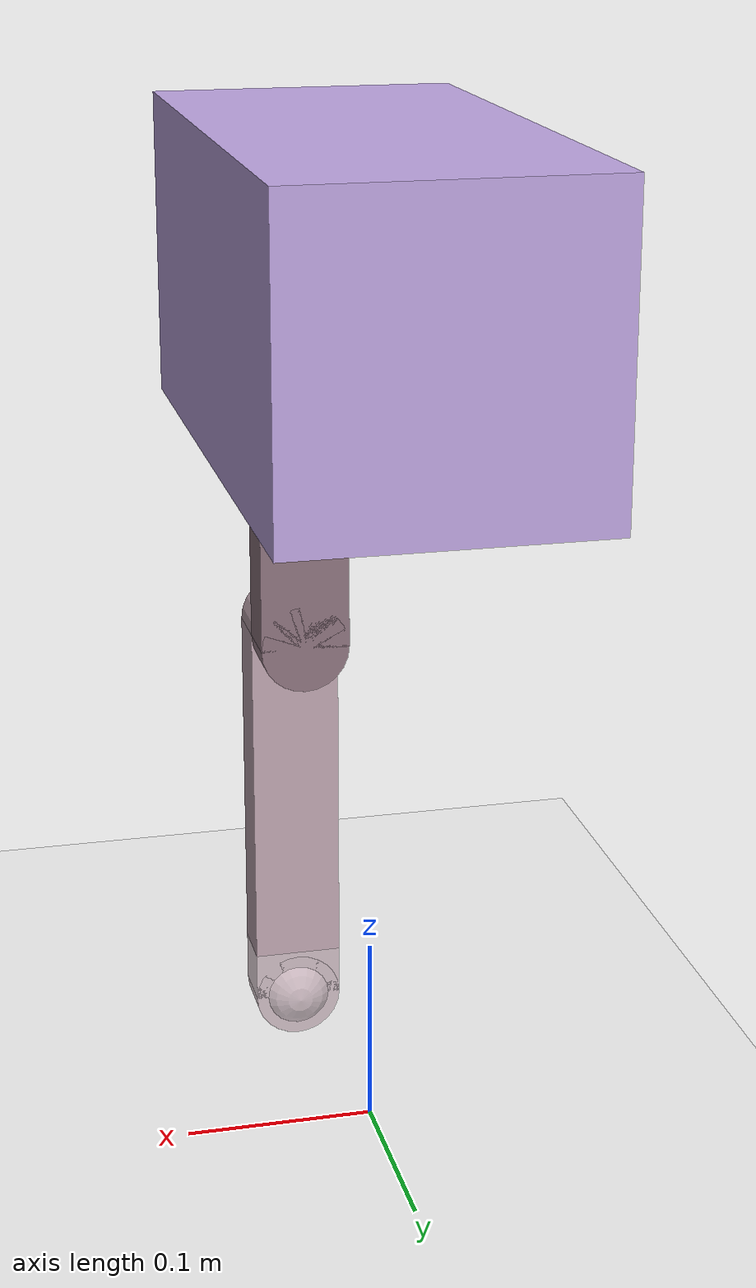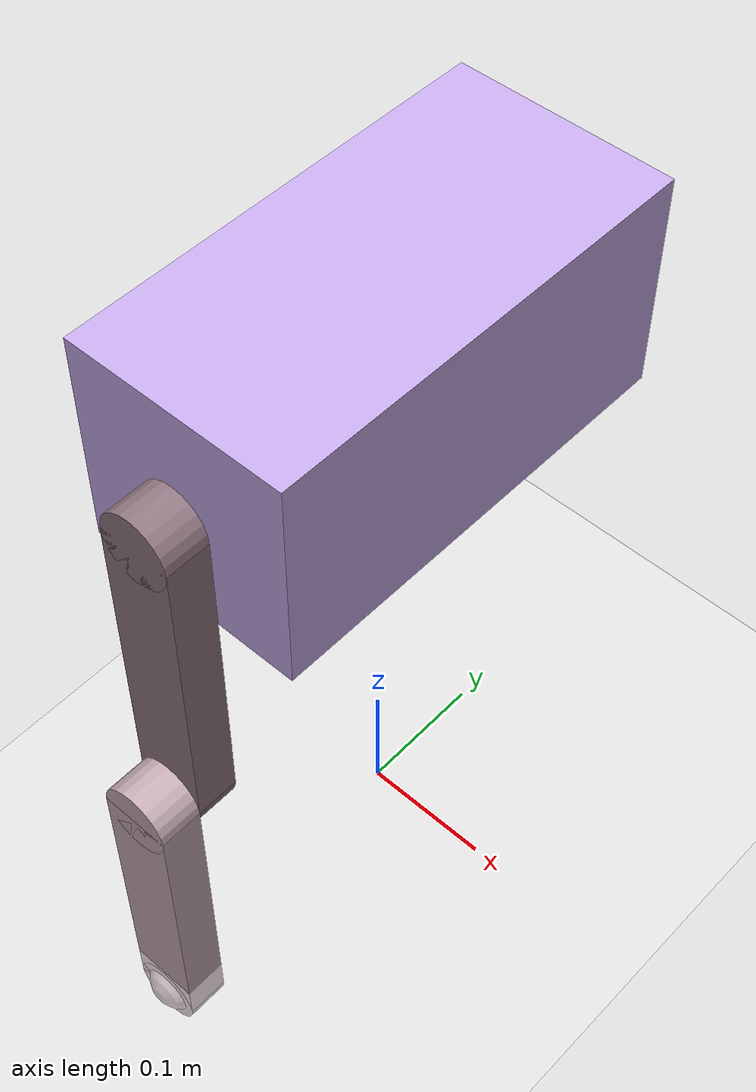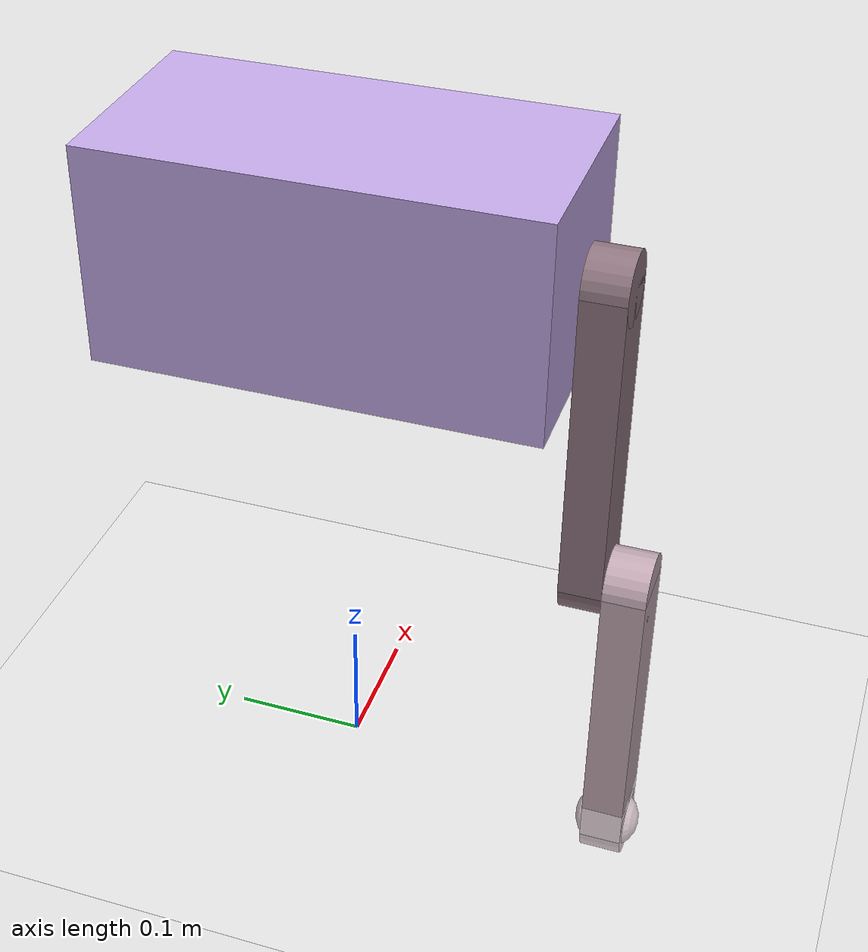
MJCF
<mujoco>
	<option gravity="0 0 -9.8" timestep="0.002" />
    <asset>
		<material name = "torso" rgba = ".76 .66 .9 1" />
		<material name = "link1" rgba = ".56 .46 .5 1" />
		<material name = "link2" rgba = ".76 .66 .7 1" />
    	<texture type="skybox" builtin="gradient" rgb1="1 1 1" rgb2=".6 .8 1" width="256" height="256"/>
    </asset>
	<worldbody>
        <light diffuse=".7 .7 .7" pos="0 0 3" dir="0 0 -10"/>
		<geom type="plane" size="1 1 0.01" rgba=".95 .95 .95 1"/>

		<body pos = "0 0 0.45">
			<joint type = "slide" axis="0 0 1" pos="0 0 0"/>
			<geom name="my_torso" type="box" size=".08 .16 .08" material = "torso" mass="5"/>
			<body pos="0 -.18 -0.12" euler ="90 0 0">
				<joint name="jointA" type = "hinge" axis="0 0 1" pos="0 .125 0"/>
				<geom type="box" size=".026 .12 .016" material ="link1" mass="2"/>
                <geom type="cylinder" size=".026 .016" pos="0 .12 0" material ="link1"/>
                <geom type="cylinder" size=".026 .016" pos="0 -.12 0" material ="link1"/>
                <body pos="0 -.24 .032">
				    <joint name="jointB" type = "hinge" axis="0 0 1" pos="0 .125 0"/>
				    <geom type="box" size=".026 .12 .016" material = "link2" mass = "1"/>
                    <geom type="cylinder" size=".026 .016" pos="0 .12 0" material ="link2"/>
                    <geom type="cylinder" size=".026 .016" pos="0 -.12 0" material ="link2"/>
					<site name='tip' size = "0.025" pos = "0 -.12 0" material ="link2"/>
			    </body>
            </body>
		</body>

	</worldbody>
    <actuator>
		<motor name="torqueA" joint="jointA"  gear="1" ctrllimited="true" ctrlrange="-10 10"/>
		<position name ="pos_servoA" joint="jointA" kp="0"/>
		<velocity name ="vel_servoA" joint="jointA" kv="0"/>
		<motor name="torqueB" joint="jointB"  gear="1" ctrllimited="true" ctrlrange="-10 10"/>
		<position name ="pos_servoB" joint="jointB" kp="0"/>
		<velocity name ="vel_servoB" joint="jointB" kv="0"/>
    </actuator>
	<sensor>
        <framepos objtype="site" objname="tip"/>
	</sensor>
</mujoco>
